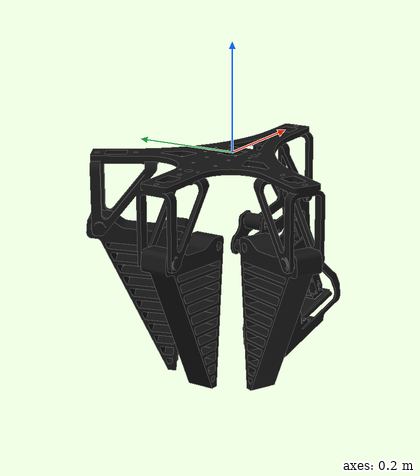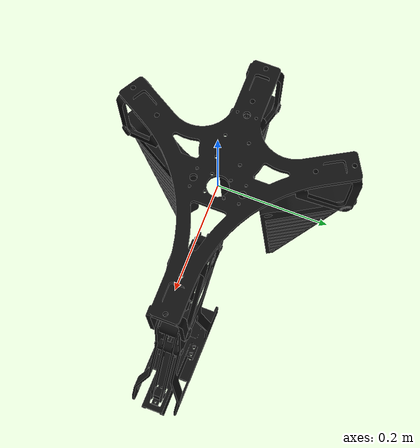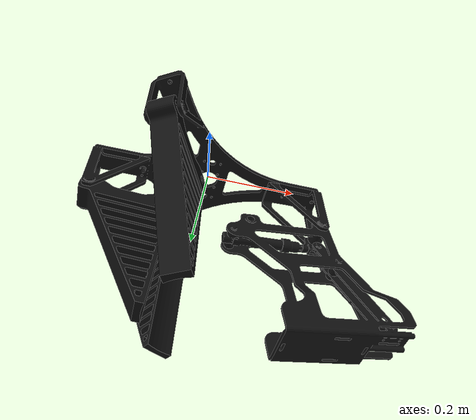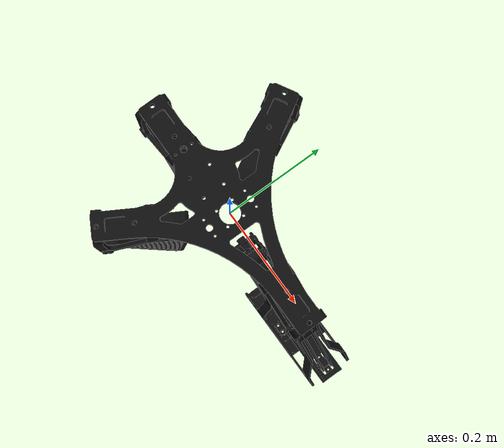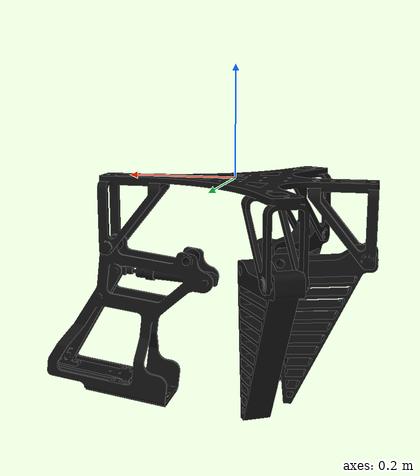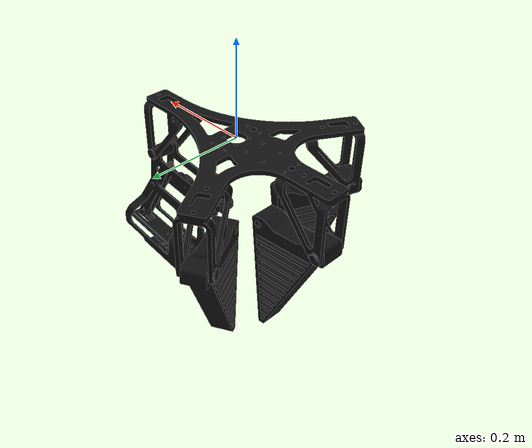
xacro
<?xml version="1.0" ?>
<robot name="motoman_hc10" xmlns:xacro="http://ros.org/wiki/xacro">
  <xacro:include filename="$(find gripper)/urdf/gripper_macro.xacro" />

  <!-- Joint controller -->
  <gazebo>
		<plugin name="gazebo_ros_control" filename="libgazebo_ros_control.so"/>
  </gazebo>

  <!-- Used for fixing robot to Gazebo 'base_link' -->
  <xacro:gripper prefix=""/>

  <link name="world"/>
  <joint name="fixed" type="fixed">
    <parent link="world"/>
    <child link="frame_top_link"/>
  </joint>

</robot>

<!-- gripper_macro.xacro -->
<robot xmlns:xacro="http://ros.org/wiki/xacro">
  <xacro:macro name="gripper" params="prefix">
    <xacro:include filename="$(find gripper)/urdf/gripper.gazebo" />

    <!-- link list -->
    <link name="${prefix}frame_top_link">
      <visual>
        <geometry>
          <mesh filename="package://gripper/meshes/frame_top.dae"/>
        </geometry>
      </visual>
      <collision>
        <geometry>
          <mesh filename="package://gripper/meshes/frame_top.dae"/>
        </geometry>
      </collision>
      <inertial>
        <mass value="1" />
        <origin xyz="0 0 0" rpy="0 0 0"/>
        <inertia
        ixx="1.0" ixy="0.0" ixz="0.0"
        iyy="1.0" iyz="0.0"
        izz="1.0"/>
      </inertial>
    </link>

    <link name="${prefix}finger_1_link">
      <visual>
        <geometry>
          <mesh filename="package://gripper/meshes/finger.dae"/>
        </geometry>
      </visual>
      <collision>
        <geometry>
          <mesh filename="package://gripper/meshes/finger.dae"/>
        </geometry>
      </collision>
      <inertial>
        <mass value="1" />
        <origin xyz="0 0 0" rpy="0 0 0"/>
        <inertia
        ixx="1.0" ixy="0.0" ixz="0.0"
        iyy="1.0" iyz="0.0"
        izz="1.0"/>
      </inertial>
    </link>

    <link name="${prefix}finger_2_link">
      <visual>
        <geometry>
          <mesh filename="package://gripper/meshes/finger.dae"/>
        </geometry>
      </visual>
      <collision>
        <geometry>
          <mesh filename="package://gripper/meshes/finger.dae"/>
        </geometry>
      </collision>
      <inertial>
        <mass value="1" />
        <origin xyz="0 0 0" rpy="0 0 0"/>
        <inertia
        ixx="1.0" ixy="0.0" ixz="0.0"
        iyy="1.0" iyz="0.0"
        izz="1.0"/>
      </inertial>
    </link>

    <link name="${prefix}finger_3_link">
      <visual>
        <geometry>
          <mesh filename="package://gripper/meshes/finger.dae"/>
        </geometry>
      </visual>
      <collision>
        <geometry>
          <mesh filename="package://gripper/meshes/finger.dae"/>
        </geometry>
      </collision>
      <inertial>
        <mass value="1" />
        <origin xyz="0 0 0" rpy="0 0 0"/>
        <inertia
        ixx="1.0" ixy="0.0" ixz="0.0"
        iyy="1.0" iyz="0.0"
        izz="1.0"/>
      </inertial>
    </link>

    <link name="${prefix}knife_link">
      <visual>
        <geometry>
          <mesh filename="package://gripper/meshes/knife.dae"/>
        </geometry>
      </visual>
      <collision>
        <geometry>
          <mesh filename="package://gripper/meshes/knife.dae"/>
        </geometry>
      </collision>
      <inertial>
        <mass value="1" />
        <origin xyz="0 0 0" rpy="0 0 0"/>
        <inertia
        ixx="1.0" ixy="0.0" ixz="0.0"
        iyy="1.0" iyz="0.0"
        izz="1.0"/>
      </inertial>
    </link>

    <!-- end of link list -->

    <xacro:property name="joint_d" value="1" />
    <xacro:property name="joint_eff" value="10000" />
    <xacro:property name="joint_vel" value="20" />
    <xacro:property name="joint_f" value="10" />

    <!-- joint list -->
    <joint name="${prefix}finger_1_top_joint" type="revolute">
      <parent link="${prefix}frame_top_link"/>
      <child link="${prefix}finger_1_link"/>
      <origin xyz="-0.12521 0.21465 -0.13288" rpy="${radians(-5.45)} ${radians(0)} ${radians(-151)}" />
      <axis xyz="1 0 0" />
      <limit lower="${radians(-30)}" upper="${radians(10)}" effort="${joint_eff}" velocity="${joint_vel}"/>
      <dynamics damping="${joint_d}" friction="${joint_f}" />
    </joint>
    <joint name="${prefix}finger_2_top_joint" type="revolute">
      <parent link="${prefix}frame_top_link"/>
      <child link="${prefix}finger_2_link"/>
      <origin xyz="-0.24208 0 -0.13288" rpy="${radians(-5.45)} ${radians(0)} ${radians(-90)}" />
      <axis xyz="1 0 0" />
      <limit lower="${radians(-30)}" upper="${radians(10)}" effort="${joint_eff}" velocity="${joint_vel}"/>
      <dynamics damping="${joint_d}" friction="${joint_f}" />
    </joint>
    <joint name="${prefix}finger_3_top_joint" type="revolute">
      <parent link="${prefix}frame_top_link"/>
      <child link="${prefix}finger_3_link"/>
      <origin xyz="-0.12521 -0.21465 -0.13288" rpy="${radians(-5.45)} ${radians(0)} ${radians(-29)}" />
      <axis xyz="1 0 0" />
      <limit lower="${radians(-30)}" upper="${radians(10)}" effort="${joint_eff}" velocity="${joint_vel}"/>
      <dynamics damping="${joint_d}" friction="${joint_f}" />
    </joint>
    <joint name="${prefix}knife_top_joint" type="revolute">
      <parent link="${prefix}frame_top_link"/>
      <child link="${prefix}knife_link"/>
      <origin xyz="0.24033 0 -0.13496" rpy="${radians(0)} ${radians(0)} ${radians(0)}" />
      <axis xyz="0 1 0" />
      <limit lower="${radians(-10)}" upper="${radians(25)}" effort="${joint_eff}" velocity="${joint_vel}"/>
      <dynamics damping="${joint_d}" friction="${joint_f}" />
    </joint>
    <!-- end of joint list -->

    <!-- joint controller list -->
    <xacro:simple_transmission name="${prefix}finger_1_top_joint" interface="hardware_interface/EffortJointInterface" />
    <xacro:simple_transmission name="${prefix}finger_2_top_joint" interface="hardware_interface/EffortJointInterface" />
    <xacro:simple_transmission name="${prefix}finger_3_top_joint" interface="hardware_interface/EffortJointInterface" />
    <xacro:simple_transmission name="${prefix}knife_top_joint" interface="hardware_interface/EffortJointInterface" />
    <!-- end of joint controller list -->

    <gazebo reference="${prefix}finger_1_link">
      <gravity>0</gravity>
    </gazebo>
    <gazebo reference="${prefix}finger_2_link">
      <gravity>0</gravity>
    </gazebo>
    <gazebo reference="${prefix}finger_3_link">
      <gravity>0</gravity>
    </gazebo>
    <gazebo reference="{prefix}knife_link">
      <gravity>0</gravity>
    </gazebo>
    <gazebo reference="{prefix}frame_top_link">
      <gravity>0</gravity>
    </gazebo>
  </xacro:macro>
</robot>
